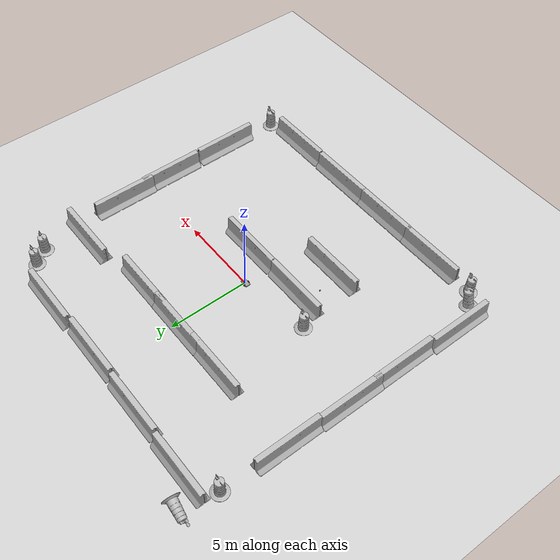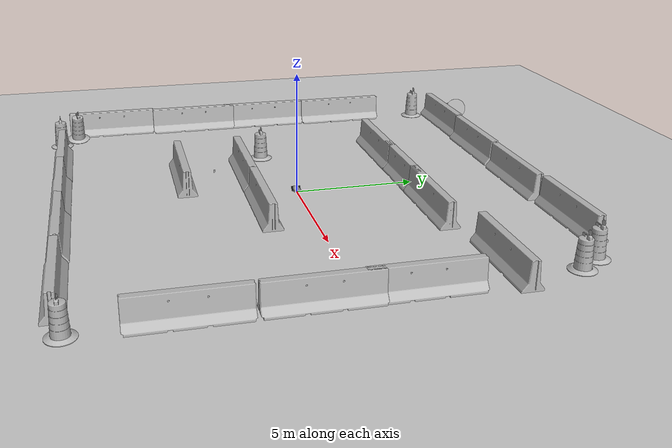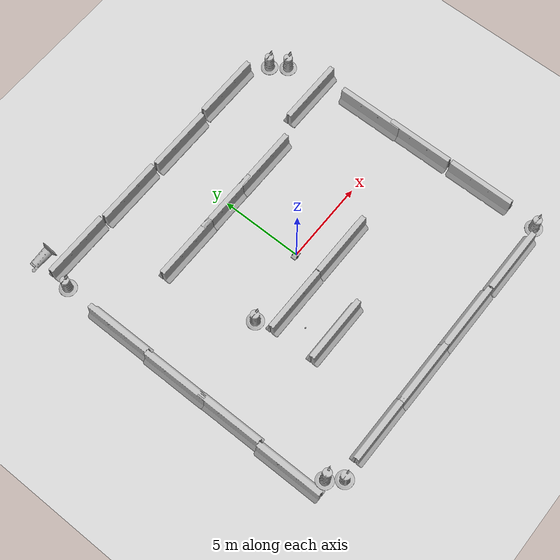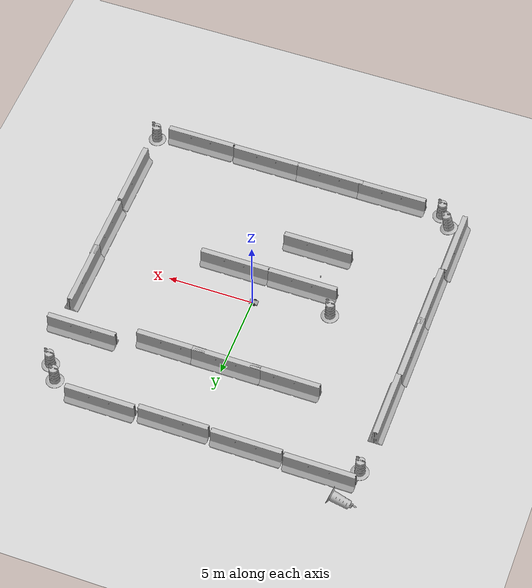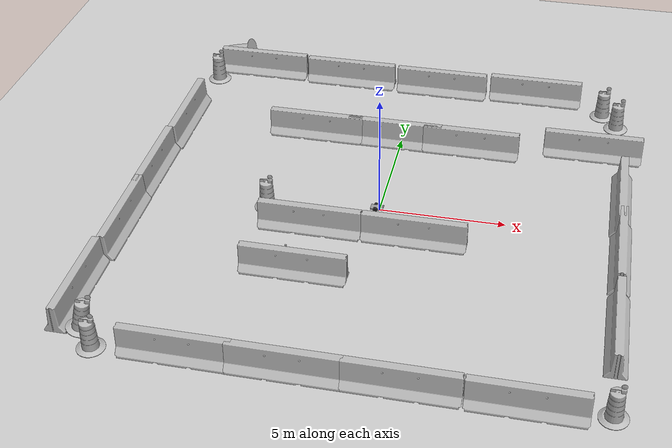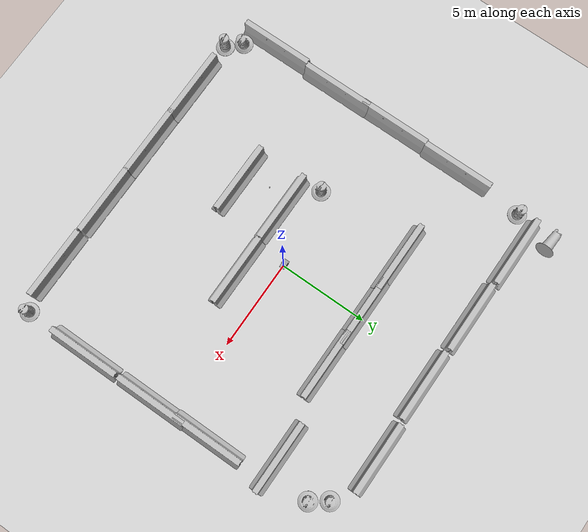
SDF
<sdf version="1.7">
 <world name="default">
  <light name="sun" type="directional">
   <pose>0 0 10 0 -0 0</pose>
   <diffuse>0.8 0.8 0.8 1</diffuse>
   <specular>0.2 0.2 0.2 1</specular>
   <attenuation>
    <range>1000</range>
    <constant>0.9</constant>
    <linear>0.01</linear>
    <quadratic>0.001</quadratic>
   </attenuation>
   <direction>-0.5 0.1 -0.9</direction>
   <spot><inner_angle>0</inner_angle><outer_angle>0</outer_angle><falloff>0</falloff></spot>
  </light>
  <model name="ground_plane">
   <static>1</static>
   <link name="link">
    <collision name="collision">
     <geometry><plane><normal>0 0 1</normal><size>100 100</size></plane></geometry>
     <surface><friction><ode><mu>100</mu><mu2>50</mu2></ode></friction></surface>
    </collision>
    <visual name="visual">
     <cast_shadows>0</cast_shadows>
     <geometry><plane><normal>0 0 1</normal><size>100 100</size></plane></geometry>
     <material>
      <script><uri>file://media/materials/scripts/gazebo.material</uri><name>Gazebo/Grey</name></script>
     </material>
    </visual>
   </link>
  </model>
  <gravity>0 0 -9.8</gravity>
  <magnetic_field>6e-06 2.3e-05 -4.2e-05</magnetic_field>
  <atmosphere type="adiabatic"/>
  <physics name="default_physics" default="0" type="ode">
   <max_step_size>0.001</max_step_size>
   <real_time_factor>1</real_time_factor>
   <real_time_update_rate>1000</real_time_update_rate>
  </physics>
  <scene><ambient>0.4 0.4 0.4 1</ambient><background>0.7 0.7 0.7 1</background><shadows>1</shadows></scene>
  <spherical_coordinates>
   <surface_model>EARTH_WGS84</surface_model>
   <latitude_deg>0</latitude_deg>
   <longitude_deg>0</longitude_deg>
   <elevation>0</elevation>
   <heading_deg>0</heading_deg>
  </spherical_coordinates>
  <model name="jersey_barrier">
   <static>1</static>
   <link name="link">
    <visual name="visual">
     <geometry><mesh><uri>model://jersey_barrier/meshes/jersey_barrier.dae</uri></mesh></geometry>
    </visual>
    <collision name="upright">
     <pose>0 0 0.5715 0 -0 0</pose>
     <geometry><box><size>4.06542 0.3063 1.143</size></box></geometry>
    </collision>
    <collision name="base">
     <pose>0 0 0.032258 0 -0 0</pose>
     <geometry><box><size>4.06542 0.8107 0.064516</size></box></geometry>
    </collision>
    <collision name="base2">
     <pose>0 0 0.1 0 -0 0</pose>
     <geometry><box><size>4.06542 0.65 0.1</size></box></geometry>
    </collision>
    <collision name="base3">
     <pose>0 0 0.2 0 -0 0</pose>
     <geometry><box><size>4.06542 0.5 0.1</size></box></geometry>
    </collision>
    <collision name="left-angle">
     <pose>0 -0.224 0.2401 0.9 -0 0</pose>
     <geometry><box><size>4.06542 0.5 0.064516</size></box></geometry>
    </collision>
    <collision name="right-angle">
     <pose>0 0.224 0.2401 -0.9 0 0</pose>
     <geometry><box><size>4.06542 0.5 0.064516</size></box></geometry>
    </collision>
   </link>
   <pose>-7.31407 9.4608 0 0 -0 0</pose>
  </model>
  <model name="jersey_barrier_clone">
   <static>1</static>
   <link name="link">
    <visual name="visual">
     <geometry><mesh><uri>model://jersey_barrier/meshes/jersey_barrier.dae</uri></mesh></geometry>
    </visual>
    <collision name="upright">
     <pose>0 0 0.5715 0 -0 0</pose>
     <geometry><box><size>4.06542 0.3063 1.143</size></box></geometry>
    </collision>
    <collision name="base">
     <pose>0 0 0.032258 0 -0 0</pose>
     <geometry><box><size>4.06542 0.8107 0.064516</size></box></geometry>
    </collision>
    <collision name="base2">
     <pose>0 0 0.1 0 -0 0</pose>
     <geometry><box><size>4.06542 0.65 0.1</size></box></geometry>
    </collision>
    <collision name="base3">
     <pose>0 0 0.2 0 -0 0</pose>
     <geometry><box><size>4.06542 0.5 0.1</size></box></geometry>
    </collision>
    <collision name="left-angle">
     <pose>0 -0.224 0.2401 0.9 -0 0</pose>
     <geometry><box><size>4.06542 0.5 0.064516</size></box></geometry>
    </collision>
    <collision name="right-angle">
     <pose>0 0.224 0.2401 -0.9 0 0</pose>
     <geometry><box><size>4.06542 0.5 0.064516</size></box></geometry>
    </collision>
   </link>
   <pose>-3.14157 9.36075 0 0 -0 0</pose>
  </model>
  <model name="jersey_barrier_clone_0">
   <static>1</static>
   <link name="link">
    <visual name="visual">
     <geometry><mesh><uri>model://jersey_barrier/meshes/jersey_barrier.dae</uri></mesh></geometry>
    </visual>
    <collision name="upright">
     <pose>0 0 0.5715 0 -0 0</pose>
     <geometry><box><size>4.06542 0.3063 1.143</size></box></geometry>
    </collision>
    <collision name="base">
     <pose>0 0 0.032258 0 -0 0</pose>
     <geometry><box><size>4.06542 0.8107 0.064516</size></box></geometry>
    </collision>
    <collision name="base2">
     <pose>0 0 0.1 0 -0 0</pose>
     <geometry><box><size>4.06542 0.65 0.1</size></box></geometry>
    </collision>
    <collision name="base3">
     <pose>0 0 0.2 0 -0 0</pose>
     <geometry><box><size>4.06542 0.5 0.1</size></box></geometry>
    </collision>
    <collision name="left-angle">
     <pose>0 -0.224 0.2401 0.9 -0 0</pose>
     <geometry><box><size>4.06542 0.5 0.064516</size></box></geometry>
    </collision>
    <collision name="right-angle">
     <pose>0 0.224 0.2401 -0.9 0 0</pose>
     <geometry><box><size>4.06542 0.5 0.064516</size></box></geometry>
    </collision>
   </link>
   <pose>1.07642 9.29085 0 0 -0 0</pose>
  </model>
  <model name="jersey_barrier_clone_1">
   <static>1</static>
   <link name="link">
    <visual name="visual">
     <geometry><mesh><uri>model://jersey_barrier/meshes/jersey_barrier.dae</uri></mesh></geometry>
    </visual>
    <collision name="upright">
     <pose>0 0 0.5715 0 -0 0</pose>
     <geometry><box><size>4.06542 0.3063 1.143</size></box></geometry>
    </collision>
    <collision name="base">
     <pose>0 0 0.032258 0 -0 0</pose>
     <geometry><box><size>4.06542 0.8107 0.064516</size></box></geometry>
    </collision>
    <collision name="base2">
     <pose>0 0 0.1 0 -0 0</pose>
     <geometry><box><size>4.06542 0.65 0.1</size></box></geometry>
    </collision>
    <collision name="base3">
     <pose>0 0 0.2 0 -0 0</pose>
     <geometry><box><size>4.06542 0.5 0.1</size></box></geometry>
    </collision>
    <collision name="left-angle">
     <pose>0 -0.224 0.2401 0.9 -0 0</pose>
     <geometry><box><size>4.06542 0.5 0.064516</size></box></geometry>
    </collision>
    <collision name="right-angle">
     <pose>0 0.224 0.2401 -0.9 0 0</pose>
     <geometry><box><size>4.06542 0.5 0.064516</size></box></geometry>
    </collision>
   </link>
   <pose>5.32096 9.42195 0 0 -0 0</pose>
  </model>
  <model name="jersey_barrier_clone_3">
   <static>1</static>
   <link name="link">
    <visual name="visual">
     <geometry><mesh><uri>model://jersey_barrier/meshes/jersey_barrier.dae</uri></mesh></geometry>
    </visual>
    <collision name="upright">
     <pose>0 0 0.5715 0 -0 0</pose>
     <geometry><box><size>4.06542 0.3063 1.143</size></box></geometry>
    </collision>
    <collision name="base">
     <pose>0 0 0.032258 0 -0 0</pose>
     <geometry><box><size>4.06542 0.8107 0.064516</size></box></geometry>
    </collision>
    <collision name="base2">
     <pose>0 0 0.1 0 -0 0</pose>
     <geometry><box><size>4.06542 0.65 0.1</size></box></geometry>
    </collision>
    <collision name="base3">
     <pose>0 0 0.2 0 -0 0</pose>
     <geometry><box><size>4.06542 0.5 0.1</size></box></geometry>
    </collision>
    <collision name="left-angle">
     <pose>0 -0.224 0.2401 0.9 -0 0</pose>
     <geometry><box><size>4.06542 0.5 0.064516</size></box></geometry>
    </collision>
    <collision name="right-angle">
     <pose>0 0.224 0.2401 -0.9 0 0</pose>
     <geometry><box><size>4.06542 0.5 0.064516</size></box></geometry>
    </collision>
   </link>
   <pose>8.07054 5.40245 0 0 -0 0</pose>
  </model>
  <model name="jersey_barrier_clone_3_clone">
   <static>1</static>
   <link name="link">
    <visual name="visual">
     <geometry><mesh><uri>model://jersey_barrier/meshes/jersey_barrier.dae</uri></mesh></geometry>
    </visual>
    <collision name="upright">
     <pose>0 0 0.5715 0 -0 0</pose>
     <geometry><box><size>4.06542 0.3063 1.143</size></box></geometry>
    </collision>
    <collision name="base">
     <pose>0 0 0.032258 0 -0 0</pose>
     <geometry><box><size>4.06542 0.8107 0.064516</size></box></geometry>
    </collision>
    <collision name="base2">
     <pose>0 0 0.1 0 -0 0</pose>
     <geometry><box><size>4.06542 0.65 0.1</size></box></geometry>
    </collision>
    <collision name="base3">
     <pose>0 0 0.2 0 -0 0</pose>
     <geometry><box><size>4.06542 0.5 0.1</size></box></geometry>
    </collision>
    <collision name="left-angle">
     <pose>0 -0.224 0.2401 0.9 -0 0</pose>
     <geometry><box><size>4.06542 0.5 0.064516</size></box></geometry>
    </collision>
    <collision name="right-angle">
     <pose>0 0.224 0.2401 -0.9 0 0</pose>
     <geometry><box><size>4.06542 0.5 0.064516</size></box></geometry>
    </collision>
   </link>
   <pose>9.37123 2.01404 0 0 0 -1.56865</pose>
  </model>
  <model name="jersey_barrier_clone_3_clone_0">
   <static>1</static>
   <link name="link">
    <visual name="visual">
     <geometry><mesh><uri>model://jersey_barrier/meshes/jersey_barrier.dae</uri></mesh></geometry>
    </visual>
    <collision name="upright">
     <pose>0 0 0.5715 0 -0 0</pose>
     <geometry><box><size>4.06542 0.3063 1.143</size></box></geometry>
    </collision>
    <collision name="base">
     <pose>0 0 0.032258 0 -0 0</pose>
     <geometry><box><size>4.06542 0.8107 0.064516</size></box></geometry>
    </collision>
    <collision name="base2">
     <pose>0 0 0.1 0 -0 0</pose>
     <geometry><box><size>4.06542 0.65 0.1</size></box></geometry>
    </collision>
    <collision name="base3">
     <pose>0 0 0.2 0 -0 0</pose>
     <geometry><box><size>4.06542 0.5 0.1</size></box></geometry>
    </collision>
    <collision name="left-angle">
     <pose>0 -0.224 0.2401 0.9 -0 0</pose>
     <geometry><box><size>4.06542 0.5 0.064516</size></box></geometry>
    </collision>
    <collision name="right-angle">
     <pose>0 0.224 0.2401 -0.9 0 0</pose>
     <geometry><box><size>4.06542 0.5 0.064516</size></box></geometry>
    </collision>
   </link>
   <pose>9.42881 -1.37491 0 0 0 -1.56865</pose>
  </model>
  <model name="jersey_barrier_clone_3_clone_1">
   <static>1</static>
   <link name="link">
    <visual name="visual">
     <geometry><mesh><uri>model://jersey_barrier/meshes/jersey_barrier.dae</uri></mesh></geometry>
    </visual>
    <collision name="upright">
     <pose>0 0 0.5715 0 -0 0</pose>
     <geometry><box><size>4.06542 0.3063 1.143</size></box></geometry>
    </collision>
    <collision name="base">
     <pose>0 0 0.032258 0 -0 0</pose>
     <geometry><box><size>4.06542 0.8107 0.064516</size></box></geometry>
    </collision>
    <collision name="base2">
     <pose>0 0 0.1 0 -0 0</pose>
     <geometry><box><size>4.06542 0.65 0.1</size></box></geometry>
    </collision>
    <collision name="base3">
     <pose>0 0 0.2 0 -0 0</pose>
     <geometry><box><size>4.06542 0.5 0.1</size></box></geometry>
    </collision>
    <collision name="left-angle">
     <pose>0 -0.224 0.2401 0.9 -0 0</pose>
     <geometry><box><size>4.06542 0.5 0.064516</size></box></geometry>
    </collision>
    <collision name="right-angle">
     <pose>0 0.224 0.2401 -0.9 0 0</pose>
     <geometry><box><size>4.06542 0.5 0.064516</size></box></geometry>
    </collision>
   </link>
   <pose>9.44759 -5.55719 0 0 0 -1.56865</pose>
  </model>
  <model name="jersey_barrier_clone_2_clone">
   <static>1</static>
   <link name="link">
    <visual name="visual">
     <geometry><mesh><uri>model://jersey_barrier/meshes/jersey_barrier.dae</uri></mesh></geometry>
    </visual>
    <collision name="upright">
     <pose>0 0 0.5715 0 -0 0</pose>
     <geometry><box><size>4.06542 0.3063 1.143</size></box></geometry>
    </collision>
    <collision name="base">
     <pose>0 0 0.032258 0 -0 0</pose>
     <geometry><box><size>4.06542 0.8107 0.064516</size></box></geometry>
    </collision>
    <collision name="base2">
     <pose>0 0 0.1 0 -0 0</pose>
     <geometry><box><size>4.06542 0.65 0.1</size></box></geometry>
    </collision>
    <collision name="base3">
     <pose>0 0 0.2 0 -0 0</pose>
     <geometry><box><size>4.06542 0.5 0.1</size></box></geometry>
    </collision>
    <collision name="left-angle">
     <pose>0 -0.224 0.2401 0.9 -0 0</pose>
     <geometry><box><size>4.06542 0.5 0.064516</size></box></geometry>
    </collision>
    <collision name="right-angle">
     <pose>0 0.224 0.2401 -0.9 0 0</pose>
     <geometry><box><size>4.06542 0.5 0.064516</size></box></geometry>
    </collision>
   </link>
   <pose>6.70657 -9.54347 0 0 -0 0</pose>
  </model>
  <model name="jersey_barrier_clone_2_clone_0">
   <static>1</static>
   <link name="link">
    <visual name="visual">
     <geometry><mesh><uri>model://jersey_barrier/meshes/jersey_barrier.dae</uri></mesh></geometry>
    </visual>
    <collision name="upright">
     <pose>0 0 0.5715 0 -0 0</pose>
     <geometry><box><size>4.06542 0.3063 1.143</size></box></geometry>
    </collision>
    <collision name="base">
     <pose>0 0 0.032258 0 -0 0</pose>
     <geometry><box><size>4.06542 0.8107 0.064516</size></box></geometry>
    </collision>
    <collision name="base2">
     <pose>0 0 0.1 0 -0 0</pose>
     <geometry><box><size>4.06542 0.65 0.1</size></box></geometry>
    </collision>
    <collision name="base3">
     <pose>0 0 0.2 0 -0 0</pose>
     <geometry><box><size>4.06542 0.5 0.1</size></box></geometry>
    </collision>
    <collision name="left-angle">
     <pose>0 -0.224 0.2401 0.9 -0 0</pose>
     <geometry><box><size>4.06542 0.5 0.064516</size></box></geometry>
    </collision>
    <collision name="right-angle">
     <pose>0 0.224 0.2401 -0.9 0 0</pose>
     <geometry><box><size>4.06542 0.5 0.064516</size></box></geometry>
    </collision>
   </link>
   <pose>2.59616 -9.50928 0 0 -0 0</pose>
  </model>
  <model name="jersey_barrier_clone_2_clone_1">
   <static>1</static>
   <link name="link">
    <visual name="visual">
     <geometry><mesh><uri>model://jersey_barrier/meshes/jersey_barrier.dae</uri></mesh></geometry>
    </visual>
    <collision name="upright">
     <pose>0 0 0.5715 0 -0 0</pose>
     <geometry><box><size>4.06542 0.3063 1.143</size></box></geometry>
    </collision>
    <collision name="base">
     <pose>0 0 0.032258 0 -0 0</pose>
     <geometry><box><size>4.06542 0.8107 0.064516</size></box></geometry>
    </collision>
    <collision name="base2">
     <pose>0 0 0.1 0 -0 0</pose>
     <geometry><box><size>4.06542 0.65 0.1</size></box></geometry>
    </collision>
    <collision name="base3">
     <pose>0 0 0.2 0 -0 0</pose>
     <geometry><box><size>4.06542 0.5 0.1</size></box></geometry>
    </collision>
    <collision name="left-angle">
     <pose>0 -0.224 0.2401 0.9 -0 0</pose>
     <geometry><box><size>4.06542 0.5 0.064516</size></box></geometry>
    </collision>
    <collision name="right-angle">
     <pose>0 0.224 0.2401 -0.9 0 0</pose>
     <geometry><box><size>4.06542 0.5 0.064516</size></box></geometry>
    </collision>
   </link>
   <pose>-1.33414 -9.50852 0 0 -0 0</pose>
  </model>
  <model name="jersey_barrier_clone_2_clone_2">
   <static>1</static>
   <link name="link">
    <visual name="visual">
     <geometry><mesh><uri>model://jersey_barrier/meshes/jersey_barrier.dae</uri></mesh></geometry>
    </visual>
    <collision name="upright">
     <pose>0 0 0.5715 0 -0 0</pose>
     <geometry><box><size>4.06542 0.3063 1.143</size></box></geometry>
    </collision>
    <collision name="base">
     <pose>0 0 0.032258 0 -0 0</pose>
     <geometry><box><size>4.06542 0.8107 0.064516</size></box></geometry>
    </collision>
    <collision name="base2">
     <pose>0 0 0.1 0 -0 0</pose>
     <geometry><box><size>4.06542 0.65 0.1</size></box></geometry>
    </collision>
    <collision name="base3">
     <pose>0 0 0.2 0 -0 0</pose>
     <geometry><box><size>4.06542 0.5 0.1</size></box></geometry>
    </collision>
    <collision name="left-angle">
     <pose>0 -0.224 0.2401 0.9 -0 0</pose>
     <geometry><box><size>4.06542 0.5 0.064516</size></box></geometry>
    </collision>
    <collision name="right-angle">
     <pose>0 0.224 0.2401 -0.9 0 0</pose>
     <geometry><box><size>4.06542 0.5 0.064516</size></box></geometry>
    </collision>
   </link>
   <pose>-5.12856 -9.49634 0 0 -0 0</pose>
  </model>
  <model name="jersey_barrier_clone_3_clone_1_clone">
   <static>1</static>
   <link name="link">
    <visual name="visual">
     <geometry><mesh><uri>model://jersey_barrier/meshes/jersey_barrier.dae</uri></mesh></geometry>
    </visual>
    <collision name="upright">
     <pose>0 0 0.5715 0 -0 0</pose>
     <geometry><box><size>4.06542 0.3063 1.143</size></box></geometry>
    </collision>
    <collision name="base">
     <pose>0 0 0.032258 0 -0 0</pose>
     <geometry><box><size>4.06542 0.8107 0.064516</size></box></geometry>
    </collision>
    <collision name="base2">
     <pose>0 0 0.1 0 -0 0</pose>
     <geometry><box><size>4.06542 0.65 0.1</size></box></geometry>
    </collision>
    <collision name="base3">
     <pose>0 0 0.2 0 -0 0</pose>
     <geometry><box><size>4.06542 0.5 0.1</size></box></geometry>
    </collision>
    <collision name="left-angle">
     <pose>0 -0.224 0.2401 0.9 -0 0</pose>
     <geometry><box><size>4.06542 0.5 0.064516</size></box></geometry>
    </collision>
    <collision name="right-angle">
     <pose>0 0.224 0.2401 -0.9 0 0</pose>
     <geometry><box><size>4.06542 0.5 0.064516</size></box></geometry>
    </collision>
   </link>
   <pose>-9.63255 -7.16573 0 0 0 -1.56865</pose>
  </model>
  <model name="jersey_barrier_clone_3_clone_1_clone_0">
   <static>1</static>
   <link name="link">
    <visual name="visual">
     <geometry><mesh><uri>model://jersey_barrier/meshes/jersey_barrier.dae</uri></mesh></geometry>
    </visual>
    <collision name="upright">
     <pose>0 0 0.5715 0 -0 0</pose>
     <geometry><box><size>4.06542 0.3063 1.143</size></box></geometry>
    </collision>
    <collision name="base">
     <pose>0 0 0.032258 0 -0 0</pose>
     <geometry><box><size>4.06542 0.8107 0.064516</size></box></geometry>
    </collision>
    <collision name="base2">
     <pose>0 0 0.1 0 -0 0</pose>
     <geometry><box><size>4.06542 0.65 0.1</size></box></geometry>
    </collision>
    <collision name="base3">
     <pose>0 0 0.2 0 -0 0</pose>
     <geometry><box><size>4.06542 0.5 0.1</size></box></geometry>
    </collision>
    <collision name="left-angle">
     <pose>0 -0.224 0.2401 0.9 -0 0</pose>
     <geometry><box><size>4.06542 0.5 0.064516</size></box></geometry>
    </collision>
    <collision name="right-angle">
     <pose>0 0.224 0.2401 -0.9 0 0</pose>
     <geometry><box><size>4.06542 0.5 0.064516</size></box></geometry>
    </collision>
   </link>
   <pose>-9.49112 -3.11692 0 0 0 -1.56865</pose>
  </model>
  <model name="jersey_barrier_clone_3_clone_1_clone_1">
   <static>1</static>
   <link name="link">
    <visual name="visual">
     <geometry><mesh><uri>model://jersey_barrier/meshes/jersey_barrier.dae</uri></mesh></geometry>
    </visual>
    <collision name="upright">
     <pose>0 0 0.5715 0 -0 0</pose>
     <geometry><box><size>4.06542 0.3063 1.143</size></box></geometry>
    </collision>
    <collision name="base">
     <pose>0 0 0.032258 0 -0 0</pose>
     <geometry><box><size>4.06542 0.8107 0.064516</size></box></geometry>
    </collision>
    <collision name="base2">
     <pose>0 0 0.1 0 -0 0</pose>
     <geometry><box><size>4.06542 0.65 0.1</size></box></geometry>
    </collision>
    <collision name="base3">
     <pose>0 0 0.2 0 -0 0</pose>
     <geometry><box><size>4.06542 0.5 0.1</size></box></geometry>
    </collision>
    <collision name="left-angle">
     <pose>0 -0.224 0.2401 0.9 -0 0</pose>
     <geometry><box><size>4.06542 0.5 0.064516</size></box></geometry>
    </collision>
    <collision name="right-angle">
     <pose>0 0.224 0.2401 -0.9 0 0</pose>
     <geometry><box><size>4.06542 0.5 0.064516</size></box></geometry>
    </collision>
   </link>
   <pose>-9.51828 0.469277 0 0 0 -1.56865</pose>
  </model>
  <model name="jersey_barrier_clone_3_clone_1_clone_2">
   <static>1</static>
   <link name="link">
    <visual name="visual">
     <geometry><mesh><uri>model://jersey_barrier/meshes/jersey_barrier.dae</uri></mesh></geometry>
    </visual>
    <collision name="upright">
     <pose>0 0 0.5715 0 -0 0</pose>
     <geometry><box><size>4.06542 0.3063 1.143</size></box></geometry>
    </collision>
    <collision name="base">
     <pose>0 0 0.032258 0 -0 0</pose>
     <geometry><box><size>4.06542 0.8107 0.064516</size></box></geometry>
    </collision>
    <collision name="base2">
     <pose>0 0 0.1 0 -0 0</pose>
     <geometry><box><size>4.06542 0.65 0.1</size></box></geometry>
    </collision>
    <collision name="base3">
     <pose>0 0 0.2 0 -0 0</pose>
     <geometry><box><size>4.06542 0.5 0.1</size></box></geometry>
    </collision>
    <collision name="left-angle">
     <pose>0 -0.224 0.2401 0.9 -0 0</pose>
     <geometry><box><size>4.06542 0.5 0.064516</size></box></geometry>
    </collision>
    <collision name="right-angle">
     <pose>0 0.224 0.2401 -0.9 0 0</pose>
     <geometry><box><size>4.06542 0.5 0.064516</size></box></geometry>
    </collision>
   </link>
   <pose>-9.44427 4.49555 0 0 0 -1.56865</pose>
  </model>
  <model name="Construction Barrel">
   <link name="link">
    <inertial>
     <pose>0 0 0.4 0 -0 0</pose>
     <mass>500</mass>
     <inertia><ixx>51.2096</ixx><iyy>51.2096</iyy><izz>25</izz><ixy>0</ixy><ixz>0</ixz><iyz>0</iyz></inertia>
    </inertial>
    <collision name="collision">
     <geometry><mesh><uri>model://construction_barrel/meshes/construction_barrel.dae</uri></mesh></geometry>
    </collision>
    <visual name="visual">
     <geometry><mesh><uri>model://construction_barrel/meshes/construction_barrel.dae</uri></mesh></geometry>
    </visual>
   </link>
   <pose>8.98775 7.78765 0 0 -0 -0.018071</pose>
  </model>
  <model name="Construction Barrel_0">
   <link name="link">
    <inertial>
     <pose>0 0 0.4 0 -0 0</pose>
     <mass>500</mass>
     <inertia><ixx>51.2096</ixx><iyy>51.2096</iyy><izz>25</izz><ixy>0</ixy><ixz>0</ixz><iyz>0</iyz></inertia>
    </inertial>
    <collision name="collision">
     <geometry><mesh><uri>model://construction_barrel/meshes/construction_barrel.dae</uri></mesh></geometry>
    </collision>
    <visual name="visual">
     <geometry><mesh><uri>model://construction_barrel/meshes/construction_barrel.dae</uri></mesh></geometry>
    </visual>
   </link>
   <pose>8.35071 8.6791 -1e-06 3e-06 -2e-06 0.030413</pose>
  </model>
  <model name="Construction Barrel_1">
   <link name="link">
    <inertial>
     <pose>0 0 0.4 0 -0 0</pose>
     <mass>500</mass>
     <inertia><ixx>51.2096</ixx><iyy>51.2096</iyy><izz>25</izz><ixy>0</ixy><ixz>0</ixz><iyz>0</iyz></inertia>
    </inertial>
    <collision name="collision">
     <geometry><mesh><uri>model://construction_barrel/meshes/construction_barrel.dae</uri></mesh></geometry>
    </collision>
    <visual name="visual">
     <geometry><mesh><uri>model://construction_barrel/meshes/construction_barrel.dae</uri></mesh></geometry>
    </visual>
   </link>
   <pose>-9.27248 8.48402 -2e-06 -0 7e-06 -8e-06</pose>
  </model>
  <model name="Construction Barrel_2">
   <link name="link">
    <inertial>
     <pose>0 0 0.4 0 -0 0</pose>
     <mass>500</mass>
     <inertia><ixx>51.2096</ixx><iyy>51.2096</iyy><izz>25</izz><ixy>0</ixy><ixz>0</ixz><iyz>0</iyz></inertia>
    </inertial>
    <collision name="collision">
     <geometry><mesh><uri>model://construction_barrel/meshes/construction_barrel.dae</uri></mesh></geometry>
    </collision>
    <visual name="visual">
     <geometry><mesh><uri>model://construction_barrel/meshes/construction_barrel.dae</uri></mesh></geometry>
    </visual>
   </link>
   <pose>-8.30965 10.6105 0.497941 1.84393 0.636349 -1.5123</pose>
  </model>
  <model name="Construction Barrel_3">
   <link name="link">
    <inertial>
     <pose>0 0 0.4 0 -0 0</pose>
     <mass>500</mass>
     <inertia><ixx>51.2096</ixx><iyy>51.2096</iyy><izz>25</izz><ixy>0</ixy><ixz>0</ixz><iyz>0</iyz></inertia>
    </inertial>
    <collision name="collision">
     <geometry><mesh><uri>model://construction_barrel/meshes/construction_barrel.dae</uri></mesh></geometry>
    </collision>
    <visual name="visual">
     <geometry><mesh><uri>model://construction_barrel/meshes/construction_barrel.dae</uri></mesh></geometry>
    </visual>
   </link>
   <pose>9.45371 -9.29422 -2e-06 -0 7e-06 -8e-06</pose>
  </model>
  <model name="Construction Barrel_4">
   <link name="link">
    <inertial>
     <pose>0 0 0.4 0 -0 0</pose>
     <mass>500</mass>
     <inertia><ixx>51.2096</ixx><iyy>51.2096</iyy><izz>25</izz><ixy>0</ixy><ixz>0</ixz><iyz>0</iyz></inertia>
    </inertial>
    <collision name="collision">
     <geometry><mesh><uri>model://construction_barrel/meshes/construction_barrel.dae</uri></mesh></geometry>
    </collision>
    <visual name="visual">
     <geometry><mesh><uri>model://construction_barrel/meshes/construction_barrel.dae</uri></mesh></geometry>
    </visual>
   </link>
   <pose>-8.13694 -9.59146 -0 -1e-06 -0 0.066895</pose>
  </model>
  <model name="Construction Barrel_5">
   <link name="link">
    <inertial>
     <pose>0 0 0.4 0 -0 0</pose>
     <mass>500</mass>
     <inertia><ixx>51.2096</ixx><iyy>51.2096</iyy><izz>25</izz><ixy>0</ixy><ixz>0</ixz><iyz>0</iyz></inertia>
    </inertial>
    <collision name="collision">
     <geometry><mesh><uri>model://construction_barrel/meshes/construction_barrel.dae</uri></mesh></geometry>
    </collision>
    <visual name="visual">
     <geometry><mesh><uri>model://construction_barrel/meshes/construction_barrel.dae</uri></mesh></geometry>
    </visual>
   </link>
   <pose>-8.83039 -8.82965 0.099126 0.026092 0.195637 0.272137</pose>
  </model>
  <model name="jersey_barrier_0">
   <static>1</static>
   <link name="link">
    <visual name="visual">
     <geometry><mesh><uri>model://jersey_barrier/meshes/jersey_barrier.dae</uri></mesh></geometry>
    </visual>
    <collision name="upright">
     <pose>0 0 0.5715 0 -0 0</pose>
     <geometry><box><size>4.06542 0.3063 1.143</size></box></geometry>
    </collision>
    <collision name="base">
     <pose>0 0 0.032258 0 -0 0</pose>
     <geometry><box><size>4.06542 0.8107 0.064516</size></box></geometry>
    </collision>
    <collision name="base2">
     <pose>0 0 0.1 0 -0 0</pose>
     <geometry><box><size>4.06542 0.65 0.1</size></box></geometry>
    </collision>
    <collision name="base3">
     <pose>0 0 0.2 0 -0 0</pose>
     <geometry><box><size>4.06542 0.5 0.1</size></box></geometry>
    </collision>
    <collision name="left-angle">
     <pose>0 -0.224 0.2401 0.9 -0 0</pose>
     <geometry><box><size>4.06542 0.5 0.064516</size></box></geometry>
    </collision>
    <collision name="right-angle">
     <pose>0 0.224 0.2401 -0.9 0 0</pose>
     <geometry><box><size>4.06542 0.5 0.064516</size></box></geometry>
    </collision>
   </link>
   <pose>-3.65517 4.71812 0 0 -0 0</pose>
  </model>
  <model name="jersey_barrier_0_clone">
   <static>1</static>
   <link name="link">
    <visual name="visual">
     <geometry><mesh><uri>model://jersey_barrier/meshes/jersey_barrier.dae</uri></mesh></geometry>
    </visual>
    <collision name="upright">
     <pose>0 0 0.5715 0 -0 0</pose>
     <geometry><box><size>4.06542 0.3063 1.143</size></box></geometry>
    </collision>
    <collision name="base">
     <pose>0 0 0.032258 0 -0 0</pose>
     <geometry><box><size>4.06542 0.8107 0.064516</size></box></geometry>
    </collision>
    <collision name="base2">
     <pose>0 0 0.1 0 -0 0</pose>
     <geometry><box><size>4.06542 0.65 0.1</size></box></geometry>
    </collision>
    <collision name="base3">
     <pose>0 0 0.2 0 -0 0</pose>
     <geometry><box><size>4.06542 0.5 0.1</size></box></geometry>
    </collision>
    <collision name="left-angle">
     <pose>0 -0.224 0.2401 0.9 -0 0</pose>
     <geometry><box><size>4.06542 0.5 0.064516</size></box></geometry>
    </collision>
    <collision name="right-angle">
     <pose>0 0.224 0.2401 -0.9 0 0</pose>
     <geometry><box><size>4.06542 0.5 0.064516</size></box></geometry>
    </collision>
   </link>
   <pose>-0.259551 4.73131 0 0 -0 0</pose>
  </model>
  <model name="jersey_barrier_0_clone_0">
   <static>1</static>
   <link name="link">
    <visual name="visual">
     <geometry><mesh><uri>model://jersey_barrier/meshes/jersey_barrier.dae</uri></mesh></geometry>
    </visual>
    <collision name="upright">
     <pose>0 0 0.5715 0 -0 0</pose>
     <geometry><box><size>4.06542 0.3063 1.143</size></box></geometry>
    </collision>
    <collision name="base">
     <pose>0 0 0.032258 0 -0 0</pose>
     <geometry><box><size>4.06542 0.8107 0.064516</size></box></geometry>
    </collision>
    <collision name="base2">
     <pose>0 0 0.1 0 -0 0</pose>
     <geometry><box><size>4.06542 0.65 0.1</size></box></geometry>
    </collision>
    <collision name="base3">
     <pose>0 0 0.2 0 -0 0</pose>
     <geometry><box><size>4.06542 0.5 0.1</size></box></geometry>
    </collision>
    <collision name="left-angle">
     <pose>0 -0.224 0.2401 0.9 -0 0</pose>
     <geometry><box><size>4.06542 0.5 0.064516</size></box></geometry>
    </collision>
    <collision name="right-angle">
     <pose>0 0.224 0.2401 -0.9 0 0</pose>
     <geometry><box><size>4.06542 0.5 0.064516</size></box></geometry>
    </collision>
   </link>
   <pose>2.99134 4.7208 0 0 -0 0</pose>
  </model>
  <model name="jersey_barrier_0_clone_1">
   <static>1</static>
   <link name="link">
    <visual name="visual">
     <geometry><mesh><uri>model://jersey_barrier/meshes/jersey_barrier.dae</uri></mesh></geometry>
    </visual>
    <collision name="upright">
     <pose>0 0 0.5715 0 -0 0</pose>
     <geometry><box><size>4.06542 0.3063 1.143</size></box></geometry>
    </collision>
    <collision name="base">
     <pose>0 0 0.032258 0 -0 0</pose>
     <geometry><box><size>4.06542 0.8107 0.064516</size></box></geometry>
    </collision>
    <collision name="base2">
     <pose>0 0 0.1 0 -0 0</pose>
     <geometry><box><size>4.06542 0.65 0.1</size></box></geometry>
    </collision>
    <collision name="base3">
     <pose>0 0 0.2 0 -0 0</pose>
     <geometry><box><size>4.06542 0.5 0.1</size></box></geometry>
    </collision>
    <collision name="left-angle">
     <pose>0 -0.224 0.2401 0.9 -0 0</pose>
     <geometry><box><size>4.06542 0.5 0.064516</size></box></geometry>
    </collision>
    <collision name="right-angle">
     <pose>0 0.224 0.2401 -0.9 0 0</pose>
     <geometry><box><size>4.06542 0.5 0.064516</size></box></geometry>
    </collision>
   </link>
   <pose>-2.38241 -1.75823 0 0 -0 0</pose>
  </model>
  <model name="jersey_barrier_0_clone_1_clone">
   <static>1</static>
   <link name="link">
    <visual name="visual">
     <geometry><mesh><uri>model://jersey_barrier/meshes/jersey_barrier.dae</uri></mesh></geometry>
    </visual>
    <collision name="upright">
     <pose>0 0 0.5715 0 -0 0</pose>
     <geometry><box><size>4.06542 0.3063 1.143</size></box></geometry>
    </collision>
    <collision name="base">
     <pose>0 0 0.032258 0 -0 0</pose>
     <geometry><box><size>4.06542 0.8107 0.064516</size></box></geometry>
    </collision>
    <collision name="base2">
     <pose>0 0 0.1 0 -0 0</pose>
     <geometry><box><size>4.06542 0.65 0.1</size></box></geometry>
    </collision>
    <collision name="base3">
     <pose>0 0 0.2 0 -0 0</pose>
     <geometry><box><size>4.06542 0.5 0.1</size></box></geometry>
    </collision>
    <collision name="left-angle">
     <pose>0 -0.224 0.2401 0.9 -0 0</pose>
     <geometry><box><size>4.06542 0.5 0.064516</size></box></geometry>
    </collision>
    <collision name="right-angle">
     <pose>0 0.224 0.2401 -0.9 0 0</pose>
     <geometry><box><size>4.06542 0.5 0.064516</size></box></geometry>
    </collision>
   </link>
   <pose>1.68518 -1.7508 0 0 -0 0</pose>
  </model>
  <model name="jersey_barrier_0_clone_1_clone_clone">
   <static>1</static>
   <link name="link">
    <visual name="visual">
     <geometry><mesh><uri>model://jersey_barrier/meshes/jersey_barrier.dae</uri></mesh></geometry>
    </visual>
    <collision name="upright">
     <pose>0 0 0.5715 0 -0 0</pose>
     <geometry><box><size>4.06542 0.3063 1.143</size></box></geometry>
    </collision>
    <collision name="base">
     <pose>0 0 0.032258 0 -0 0</pose>
     <geometry><box><size>4.06542 0.8107 0.064516</size></box></geometry>
    </collision>
    <collision name="base2">
     <pose>0 0 0.1 0 -0 0</pose>
     <geometry><box><size>4.06542 0.65 0.1</size></box></geometry>
    </collision>
    <collision name="base3">
     <pose>0 0 0.2 0 -0 0</pose>
     <geometry><box><size>4.06542 0.5 0.1</size></box></geometry>
    </collision>
    <collision name="left-angle">
     <pose>0 -0.224 0.2401 0.9 -0 0</pose>
     <geometry><box><size>4.06542 0.5 0.064516</size></box></geometry>
    </collision>
    <collision name="right-angle">
     <pose>0 0.224 0.2401 -0.9 0 0</pose>
     <geometry><box><size>4.06542 0.5 0.064516</size></box></geometry>
    </collision>
   </link>
   <pose>-2.34816 -4.4651 0 0 -0 0</pose>
  </model>
  <model name="coke_can">
   <link name="link">
    <inertial>
     <pose>-0.01 -0.012 0.15 0 -0 0</pose>
     <mass>0.39</mass>
     <inertia><ixx>0.00058</ixx><ixy>0</ixy><ixz>0</ixz><iyy>0.00058</iyy><iyz>0</iyz><izz>0.00019</izz></inertia>
    </inertial>
    <collision name="collision">
     <pose>0 0 -0.46 0 -0 0</pose>
     <geometry><mesh><uri>model://coke_can/meshes/coke_can.dae</uri></mesh></geometry>
     <surface>
      <friction><ode><mu>1</mu><mu2>1</mu2></ode></friction>
      <contact><ode><kp>1e+07</kp><kd>1</kd><min_depth>0.001</min_depth><max_vel>0.1</max_vel></ode></contact>
     </surface>
    </collision>
    <visual name="visual">
     <pose>0 0 -0.46 0 -0 0</pose>
     <geometry><mesh><uri>model://coke_can/meshes/coke_can.dae</uri></mesh></geometry>
    </visual>
   </link>
   <pose>-3.0242 -3.01349 -0.1533 -3.14021 0.018204 0.825515</pose>
  </model>
  <model name="Construction Barrel_6">
   <link name="link">
    <inertial>
     <pose>0 0 0.4 0 -0 0</pose>
     <mass>500</mass>
     <inertia><ixx>51.2096</ixx><iyy>51.2096</iyy><izz>25</izz><ixy>0</ixy><ixz>0</ixz><iyz>0</iyz></inertia>
    </inertial>
    <collision name="collision">
     <geometry><mesh><uri>model://construction_barrel/meshes/construction_barrel.dae</uri></mesh></geometry>
    </collision>
    <visual name="visual">
     <geometry><mesh><uri>model://construction_barrel/meshes/construction_barrel.dae</uri></mesh></geometry>
    </visual>
   </link>
   <pose>-4.39778 -0.664369 -2e-06 -0 7e-06 -8e-06</pose>
  </model>
  <model name="group19Bot">
   <link name="base_link">
    <inertial>
     <pose>0.025 0 0.091667 0 -0 0</pose>
     <mass>6</mass>
     <inertia>
      <ixx>0.0431233</ixx>
      <ixy>0</ixy>
      <ixz>0.00625</ixz>
      <iyy>0.128543</iyy>
      <iyz>0</iyz>
      <izz>0.12616</izz>
     </inertia>
    </inertial>
    <collision name="base_link_collision"><geometry><box><size>0.5 0.3 0.07</size></box></geometry></collision>
    <collision name="base_link_collision_1">
     <pose>0.35 0 -0.05 0 -0 0</pose>
     <geometry><sphere><radius>0.05</radius></sphere></geometry>
    </collision>
    <collision name="base_link_fixed_joint_lump__laser_sensor_collision_2">
     <pose>0.15 0 0.05 0 -0 0</pose>
     <geometry><cylinder><length>0.1</length><radius>0.05</radius></cylinder></geometry>
    </collision>
    <visual name="base_link_visual">
     <geometry><box><size>0.5 0.3 0.07</size></box></geometry>
     <material>
      <script><name>Gazebo/Grey</name><uri>file://media/materials/scripts/gazebo.material</uri></script>
     </material>
    </visual>
    <visual name="base_link_fixed_joint_lump__caster_visual_1">
     <pose>0.2 0 -0.05 0 -0 0</pose>
     <geometry><sphere><radius>0.05</radius></sphere></geometry>
    </visual>
    <visual name="base_link_fixed_joint_lump__laser_sensor_visual_2">
     <pose>0.15 0 0.05 0 -0 0</pose>
     <geometry><cylinder><length>0.1</length><radius>0.05</radius></cylinder></geometry>
    </visual>
    <sensor name="head_hokuyo_sensor" type="ray">
     <visualize>1</visualize>
     <update_rate>20</update_rate>
     <ray>
      <scan>
       <horizontal>
        <samples>720</samples>
        <resolution>1</resolution>
        <min_angle>-1.5708</min_angle>
        <max_angle>1.5708</max_angle>
       </horizontal>
       <vertical><samples>1</samples><min_angle>0</min_angle><max_angle>0</max_angle></vertical>
      </scan>
      <range><min>0.1</min><max>10</max><resolution>0.01</resolution></range>
      <noise><type>gaussian</type><mean>0</mean><stddev>0.01</stddev></noise>
     </ray>
     <plugin name="gazebo_ros_head_hokuyo_controller" filename="libgazebo_ros_laser.so">
      <topicName>/group19Bot/laser/scan</topicName>
      <frameName>laser_sensor</frameName>
      <robotNamespace>/</robotNamespace>
     </plugin>
     <pose>0.15 0 0.05 0 -0 0</pose>
    </sensor>
   </link>
   <joint name="joint_left_wheel" type="revolute">
    <pose relative_to="base_link">-0.05 -0.15 0 0 -0 0</pose>
    <parent>base_link</parent>
    <child>left_wheel</child>
    <axis>
     <xyz>0 1 0</xyz>
     <limit><effort>10000</effort><velocity>1000</velocity><lower>-1e+16</lower><upper>1e+16</upper></limit>
     <dynamics>
      <damping>1</damping>
      <friction>1</friction>
      <spring_reference>0</spring_reference>
      <spring_stiffness>0</spring_stiffness>
     </dynamics>
    </axis>
   </joint>
   <link name="left_wheel">
    <pose relative_to="joint_left_wheel">0 0 0 0 -0 0</pose>
    <inertial>
     <pose>0 0 0 -0 1.5707 1.5707</pose>
     <mass>0.2</mass>
     <inertia><ixx>0.000527</ixx><ixy>0</ixy><ixz>0</ixz><iyy>0.000527</iyy><iyz>0</iyz><izz>0.001</izz></inertia>
    </inertial>
    <collision name="left_wheel_collision">
     <pose>0 0 0 1.57089 1.57079 -3.14159</pose>
     <geometry><cylinder><length>0.04</length><radius>0.1</radius></cylinder></geometry>
    </collision>
    <visual name="left_wheel_visual">
     <pose>0 0 0 1.57089 1.57079 -3.14159</pose>
     <geometry><cylinder><length>0.04</length><radius>0.1</radius></cylinder></geometry>
     <material>
      <script><name>Gazebo/Black</name><uri>file://media/materials/scripts/gazebo.material</uri></script>
     </material>
    </visual>
   </link>
   <joint name="joint_right_wheel" type="revolute">
    <pose relative_to="base_link">-0.05 0.15 0 0 -0 0</pose>
    <parent>base_link</parent>
    <child>right_wheel</child>
    <axis>
     <xyz>0 1 0</xyz>
     <limit><effort>10000</effort><velocity>1000</velocity><lower>-1e+16</lower><upper>1e+16</upper></limit>
     <dynamics>
      <damping>1</damping>
      <friction>1</friction>
      <spring_reference>0</spring_reference>
      <spring_stiffness>0</spring_stiffness>
     </dynamics>
    </axis>
   </joint>
   <link name="right_wheel">
    <pose relative_to="joint_right_wheel">0 0 0 0 -0 0</pose>
    <inertial>
     <pose>0 0 0 -0 1.5707 1.5707</pose>
     <mass>0.2</mass>
     <inertia><ixx>0.000527</ixx><ixy>0</ixy><ixz>0</ixz><iyy>0.000527</iyy><iyz>0</iyz><izz>0.001</izz></inertia>
    </inertial>
    <collision name="right_wheel_collision">
     <pose>0 0 0 1.57089 1.57079 -3.14159</pose>
     <geometry><cylinder><length>0.04</length><radius>0.1</radius></cylinder></geometry>
    </collision>
    <visual name="right_wheel_visual">
     <pose>0 0 0 1.57089 1.57079 -3.14159</pose>
     <geometry><cylinder><length>0.04</length><radius>0.1</radius></cylinder></geometry>
     <material>
      <script><name>Gazebo/Black</name><uri>file://media/materials/scripts/gazebo.material</uri></script>
     </material>
    </visual>
   </link>
   <static>0</static>
   <plugin name="differential_drive_controller" filename="libgazebo_ros_diff_drive.so">
    <alwaysOn>1</alwaysOn>
    <updateRate>20</updateRate>
    <leftJoint>joint_left_wheel</leftJoint>
    <rightJoint>joint_right_wheel</rightJoint>
    <wheelSeparation>0.4</wheelSeparation>
    <wheelDiameter>0.2</wheelDiameter>
    <torque>0.1</torque>
    <commandTopic>group19Bot/cmd_vel</commandTopic>
    <odometryTopic>odom</odometryTopic>
    <odometryFrame>odom</odometryFrame>
    <robotBaseFrame>base_link</robotBaseFrame>
    <publishWheelJointState>1</publishWheelJointState>
    <legacyMode>1</legacyMode>
    <wheelAcceleration>0</wheelAcceleration>
    <publishOdomTF>1</publishOdomTF>
    <publishWheelTF>0</publishWheelTF>
    <wheelTorque>5</wheelTorque>
    <odometrySource>world</odometrySource>
    <publishTf>1</publishTf>
    <rosDebugLevel>info</rosDebugLevel>
    <robotNamespace>/</robotNamespace>
   </plugin>
   <pose>-0.090962 0.000821 0.100001 -9e-06 2e-06 0.008341</pose>
  </model>
 </world>
</sdf>
